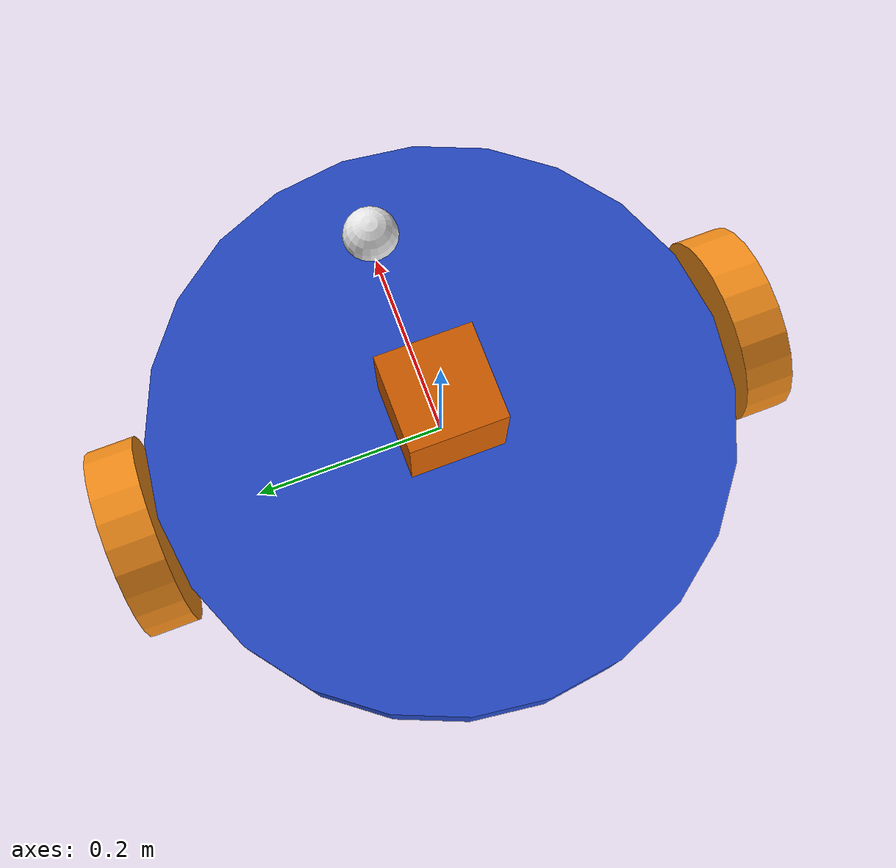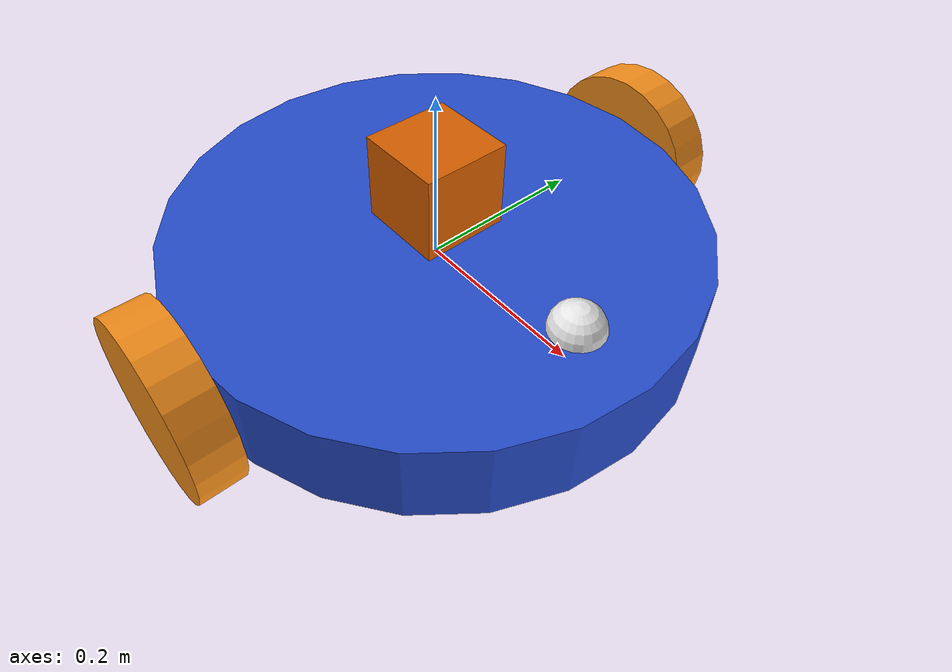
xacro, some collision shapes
<robot name="my_robot" xmlns:xacro="http://www.ros.org/wiki/xacro">
   <xacro:include filename="my_robot_wheels.xacro"/>
   <xacro:include filename="my_robot_sensors.xacro"/>
   <xacro:include filename="my_robot.gazebo"/>
  <!-- Base Footprint -->
  <link name="robot_footprint"></link>

  <xacro:property name="chassis_radius" value="0.3"/>
  <xacro:property name="wheel_width" value="0.05"/>
  <xacro:property name="chassis_length" value="0.1"/>
  <xacro:property name="chassis_height" value="0.1"/>
  <xacro:property name="caster_radius" value="0.05"/>

  <!-- Robot Base -->
  <link name="chassis">
    <visual>
      <origin xyz="0 0 0" rpy="0 0 0"/>
      <geometry>
        <cylinder radius="${chassis_radius}" length="${chassis_length}"/>
      </geometry>
    </visual>
    <collision>
      <origin xyz="0 0 0" rpy="0 0 0"/>
      <geometry>
        <cylinder radius="${chassis_radius}" length="${chassis_length}"/>
      </geometry>
    </collision>
    <inertial>
      <mass value="10"/>
      <inertia ixx="0.0" ixy="0.0" ixz="0.0" iyy="0.0" iyz="0.0" izz="0.0"/>
      <origin xyz="0 0 0" rpy="0 0 0"/>
    </inertial>
    <visual name='front_caster_visual'>
      <origin xyz="${chassis_radius * 0.8} 0 -${chassis_height/2}" rpy="0 0 0"/>
      <geometry>
        <sphere radius="0.05"/>
      </geometry>
    </visual>
    <collision name='front_caster_collision'>
      <origin xyz="${chassis_radius * 0.8} 0 -${chassis_height/2}" rpy="0 0 0"/>
      <geometry>
        <sphere radius="0.05"/>
      </geometry>
    </collision>
    <visual name='rear_caster_visual'>
      <origin xyz="-${chassis_radius * 0.8} 0 -${chassis_height/2}" rpy="0 0 0"/>
      <geometry>
        <sphere radius="${caster_radius}"/>
      </geometry>
    </visual>
    <collision name='rear_caster_collision'>
      <origin xyz="-${chassis_radius * 0.8} 0 -${chassis_height/2}" rpy="0 0 0"/>
      <geometry>
        <sphere radius="${caster_radius}"/>
      </geometry>
    </collision>
  </link>
  <gazebo reference="chassis">
    <material>
      Gazebo/Blue
    </material>
  </gazebo>

  <!-- Wheels -->
  <xacro:wheel prefix="left" x_offset="0" y_offset="${chassis_radius + wheel_width/2}" chassis_radius="${chassis_radius}" wheel_width="${wheel_width}"/>
  <xacro:wheel prefix="right" x_offset="0" y_offset="-${chassis_radius + wheel_width/2}" chassis_radius="${chassis_radius}" wheel_width="${wheel_width}"/>

  <!-- Sensors -->
  <xacro:sphere_camera prefix="front" joint_x_offset="${chassis_radius * 0.7}" joint_y_offset="0" joint_z_offset="${chassis_height/2}" chassis_radius="${chassis_radius}" chassis_height="${chassis_height}"/>
  <xacro:lidar joint_x_offset="0" joint_y_offset="0" joint_z_offset="0.1"/>

  <joint name="robot_footprint_joint" type="fixed">
    <origin xyz="0 0 0" rpy="0 0 0"/>
    <parent link="robot_footprint"/>
    <child link="chassis"/>
  </joint>
</robot>

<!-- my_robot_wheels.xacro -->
<robot name="my_robot_wheels" xmlns:xacro="http://www.ros.org/wiki/xacro">
  <!-- Properties -->
  <xacro:property name="wheel_radius" value="0.1"/>
  <xacro:property name="wheel_mass" value="1"/>

  <xacro:macro name="wheel" params="prefix x_offset y_offset chassis_radius wheel_width">
    <link name="${prefix}_wheel">
      <visual>
        <origin xyz="0 0 0" rpy="${pi/2} 0 0"/>
        <geometry>
          <cylinder radius="${wheel_radius}" length="${wheel_width}"/>
        </geometry>
      </visual>
      <collision>
        <origin xyz="0 0 0" rpy="${pi/2} 0 0"/>
        <geometry>
          <cylinder radius="${wheel_radius}" length="${wheel_width}"/>
        </geometry>
      </collision>
      <inertial>
        <mass value="${wheel_mass}"/>
        <inertia ixx="${wheel_mass * (3*wheel_radius*wheel_radius + wheel_width*wheel_width) / 12}"
                 ixy="0" ixz="0"
                 iyy="${wheel_mass * (3*wheel_radius*wheel_radius + wheel_width*wheel_width) / 12}"
                 iyz="0"
                 izz="${wheel_mass * wheel_radius*wheel_radius / 2}"/>
      </inertial>
    </link>
    <joint name="${prefix}_wheel_hinge" type="continuous">
      <parent link="chassis"/>
      <child link="${prefix}_wheel"/>
      <origin xyz="${x_offset} ${y_offset} 0" rpy="0 0 0"/>
      <axis xyz="0 1 0"/>
      <dynamics damping="1.0" friction="1.0"/>
      <limit effort="10000" velocity="1000"/>
    </joint>
    <gazebo reference="${prefix}_wheel">
      <material>Gazebo/Orange</material>
    </gazebo>
  </xacro:macro>
</robot>

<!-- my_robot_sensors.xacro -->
<robot name="my_robot_sensors" xmlns:xacro="http://www.ros.org/wiki/xacro">
  <xacro:property name="camera_radius" value="0.03"/>
  <xacro:property name="camera_mass" value="0.1"/>

  <xacro:macro name="sphere_camera" params="prefix joint_x_offset joint_y_offset joint_z_offset chassis_radius chassis_height">
    <link name="${prefix}_camera">
      <visual>
        <geometry>
          <sphere radius="${camera_radius}"/>
        </geometry>
      </visual>
      <collision>
        <geometry>
          <sphere radius="${camera_radius}"/>
        </geometry>
      </collision>
      <inertial>
        <mass value="${camera_mass}"/>
        <inertia ixx="${2*camera_mass*camera_radius*camera_radius/5}" ixy="0" ixz="0"
                 iyy="${2*camera_mass*camera_radius*camera_radius/5}" iyz="0"
                 izz="${2*camera_mass*camera_radius*camera_radius/5}"/>
      </inertial>
    </link>
    <gazebo reference="${prefix}_camera">
      <material>Gazebo/White</material>
    </gazebo>
    <joint name="${prefix}_camera_joint" type="fixed">
      <parent link="chassis"/>
      <child link="${prefix}_camera"/>
      <origin xyz="${joint_x_offset} ${joint_y_offset} ${joint_z_offset}" rpy="0 0 0"/>
    </joint>
  </xacro:macro>

  <xacro:macro name="lidar" params="joint_x_offset joint_y_offset joint_z_offset">
    <link name="hokuyo">
      <visual>
        <origin xyz="0.0 0.0 0.0" rpy="0.0 0.0 0.0"/>
        <geometry>
          <mesh filename="package://my_robot/meshes/hokuyo.dae" />
        </geometry>
      </visual>
      <collision>
        <geometry>
          <box size="0.1 0.1 0.1"/>
        </geometry>
      </collision>
      <inertial>
        <mass value="1e-5"/>
        <inertia ixx="1e-6" ixy="0.0" ixz="0.0" iyy="1e-6" iyz="0.0" izz="1e-6"/>
      </inertial>
    </link>
    <joint name="hokuyo_joint" type="fixed">
      <parent link="chassis"/>
      <child link="hokuyo"/>
      <origin xyz="${joint_x_offset} ${joint_y_offset} ${joint_z_offset}" rpy="0 0 0"/>
      <axis xyz="0 1 0"/>
    </joint>
  </xacro:macro>
</robot>
